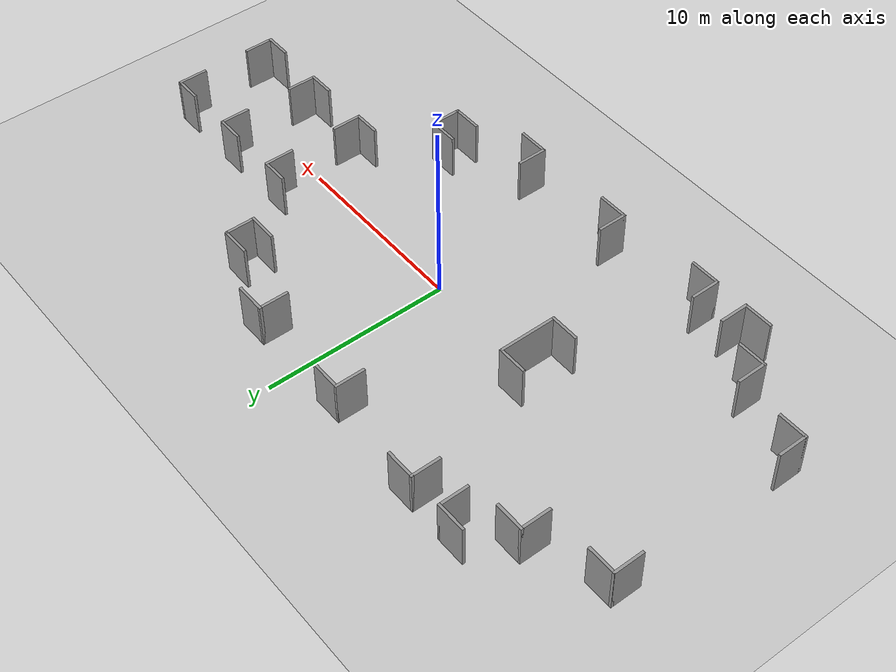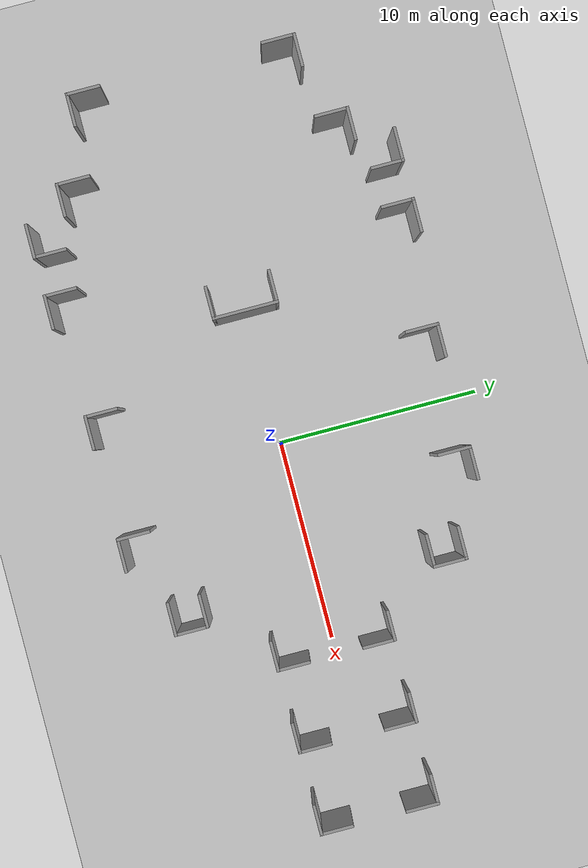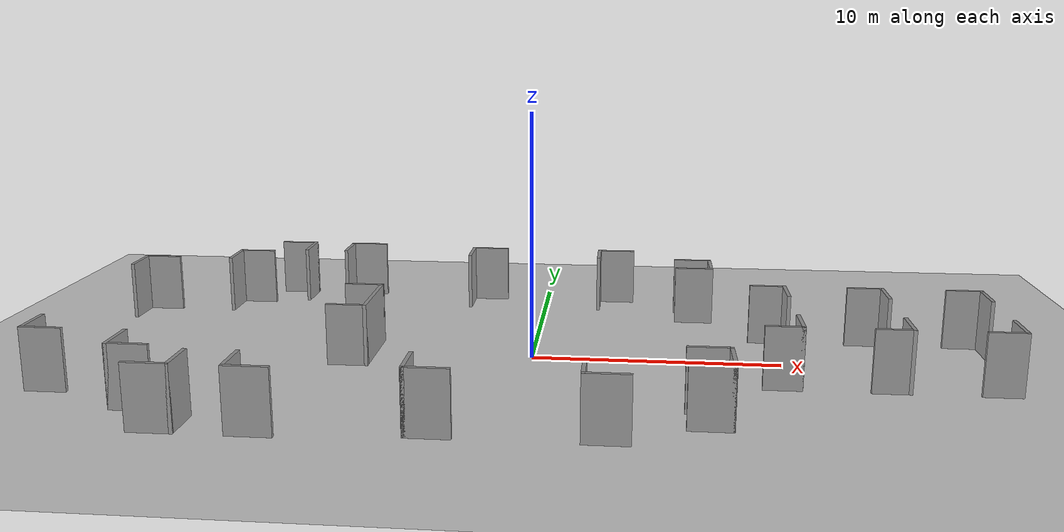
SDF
<sdf version="1.6">
 <world name="default">
  <model name="ground_plane">
   <static>1</static>
   <link name="link">
    <collision name="collision">
     <geometry><plane><normal>0 0 1</normal><size>100 100</size></plane></geometry>
     <surface>
      <contact><collide_bitmask>65535</collide_bitmask></contact>
      <friction><ode><mu>100</mu><mu2>50</mu2></ode></friction>
     </surface>
    </collision>
    <visual name="visual">
     <cast_shadows>0</cast_shadows>
     <geometry><plane><normal>0 0 1</normal><size>100 100</size></plane></geometry>
     <material>
      <script><uri>file://media/materials/scripts/gazebo.material</uri><name>Gazebo/Grey</name></script>
     </material>
    </visual>
   </link>
  </model>
  <model name="hospital_restriction_walls">
   <pose>-0.075 0 0 0 0 -1.57</pose>
   <link name="Wall_10">
    <collision name="Wall_10_Collision">
     <geometry><box><size>1.7 0.15 2.5</size></box></geometry>
     <pose>0 0 1.25 0 -0 0</pose>
    </collision>
    <visual name="Wall_10_Visual">
     <pose>0 0 1.25 0 -0 0</pose>
     <geometry><box><size>1.7 0.15 2.5</size></box></geometry>
     <material>
      <script><uri>file://media/materials/scripts/gazebo.material</uri><name>Gazebo/Grey</name></script>
      <ambient>1 1 1 1</ambient>
     </material>
     <meta><layer>0</layer></meta>
    </visual>
    <pose>4.775 -18.425 0 0 -0 3.14159</pose>
   </link>
   <link name="Wall_12">
    <collision name="Wall_12_Collision">
     <geometry><box><size>1.65 0.15 2.5</size></box></geometry>
     <pose>0 0 1.25 0 -0 0</pose>
    </collision>
    <visual name="Wall_12_Visual">
     <pose>0 0 1.25 0 -0 0</pose>
     <geometry><box><size>1.65 0.15 2.5</size></box></geometry>
     <material>
      <script><uri>file://media/materials/scripts/gazebo.material</uri><name>Gazebo/Grey</name></script>
      <ambient>1 1 1 1</ambient>
     </material>
     <meta><layer>0</layer></meta>
    </visual>
    <pose>-7.1 -13.675 0 0 -0 1.5708</pose>
   </link>
   <link name="Wall_14">
    <collision name="Wall_14_Collision">
     <geometry><box><size>1.7 0.15 2.5</size></box></geometry>
     <pose>0 0 1.25 0 -0 0</pose>
    </collision>
    <visual name="Wall_14_Visual">
     <pose>0 0 1.25 0 -0 0</pose>
     <geometry><box><size>1.7 0.15 2.5</size></box></geometry>
     <material>
      <script><uri>file://media/materials/scripts/gazebo.material</uri><name>Gazebo/Grey</name></script>
      <ambient>1 1 1 1</ambient>
     </material>
     <meta><layer>0</layer></meta>
    </visual>
    <pose>-6.325 -14.425 0 0 -0 0</pose>
   </link>
   <link name="Wall_16">
    <collision name="Wall_16_Collision">
     <geometry><box><size>1.65 0.15 2.5</size></box></geometry>
     <pose>0 0 1.25 0 -0 0</pose>
    </collision>
    <visual name="Wall_16_Visual">
     <pose>0 0 1.25 0 -0 0</pose>
     <geometry><box><size>1.65 0.15 2.5</size></box></geometry>
     <material>
      <script><uri>file://media/materials/scripts/gazebo.material</uri><name>Gazebo/Grey</name></script>
      <ambient>1 1 1 1</ambient>
     </material>
     <meta><layer>0</layer></meta>
    </visual>
    <pose>7.1 -13.675 0 0 -0 1.5708</pose>
   </link>
   <link name="Wall_18">
    <collision name="Wall_18_Collision">
     <geometry><box><size>1.7 0.15 2.5</size></box></geometry>
     <pose>0 0 1.25 0 -0 0</pose>
    </collision>
    <visual name="Wall_18_Visual">
     <pose>0 0 1.25 0 -0 0</pose>
     <geometry><box><size>1.7 0.15 2.5</size></box></geometry>
     <material>
      <script><uri>file://media/materials/scripts/gazebo.material</uri><name>Gazebo/Grey</name></script>
      <ambient>1 1 1 1</ambient>
     </material>
     <meta><layer>0</layer></meta>
    </visual>
    <pose>6.325 -14.425 0 0 -0 3.14159</pose>
   </link>
   <link name="Wall_20">
    <collision name="Wall_20_Collision">
     <geometry><box><size>1.7 0.15 2.5</size></box></geometry>
     <pose>0 0 1.25 0 -0 0</pose>
    </collision>
    <visual name="Wall_20_Visual">
     <pose>0 0 1.25 0 -0 0</pose>
     <geometry><box><size>1.7 0.15 2.5</size></box></geometry>
     <material>
      <script><uri>file://media/materials/scripts/gazebo.material</uri><name>Gazebo/Grey</name></script>
      <ambient>1 1 1 1</ambient>
     </material>
     <meta><layer>0</layer></meta>
    </visual>
    <pose>-9 -12.15 0 0 -0 1.5708</pose>
   </link>
   <link name="Wall_22">
    <collision name="Wall_22_Collision">
     <geometry><box><size>1.65 0.15 2.5</size></box></geometry>
     <pose>0 0 1.25 0 -0 0</pose>
    </collision>
    <visual name="Wall_22_Visual">
     <pose>0 0 1.25 0 -0 0</pose>
     <geometry><box><size>1.65 0.15 2.5</size></box></geometry>
     <material>
      <script><uri>file://media/materials/scripts/gazebo.material</uri><name>Gazebo/Grey</name></script>
      <ambient>1 1 1 1</ambient>
     </material>
     <meta><layer>0</layer></meta>
    </visual>
    <pose>-8.25 -11.375 0 0 -0 0</pose>
   </link>
   <link name="Wall_24">
    <collision name="Wall_24_Collision">
     <geometry><box><size>1.7 0.15 2.5</size></box></geometry>
     <pose>0 0 1.25 0 -0 0</pose>
    </collision>
    <visual name="Wall_24_Visual">
     <pose>0 0 1.25 0 -0 0</pose>
     <geometry><box><size>1.7 0.15 2.5</size></box></geometry>
     <material>
      <script><uri>file://media/materials/scripts/gazebo.material</uri><name>Gazebo/Grey</name></script>
      <ambient>1 1 1 1</ambient>
     </material>
     <meta><layer>0</layer></meta>
    </visual>
    <pose>-9 -8.7 0 0 -0 1.5708</pose>
   </link>
   <link name="Wall_26">
    <collision name="Wall_26_Collision">
     <geometry><box><size>1.65 0.15 2.5</size></box></geometry>
     <pose>0 0 1.25 0 -0 0</pose>
    </collision>
    <visual name="Wall_26_Visual">
     <pose>0 0 1.25 0 -0 0</pose>
     <geometry><box><size>1.65 0.15 2.5</size></box></geometry>
     <material>
      <script><uri>file://media/materials/scripts/gazebo.material</uri><name>Gazebo/Grey</name></script>
      <ambient>1 1 1 1</ambient>
     </material>
     <meta><layer>0</layer></meta>
    </visual>
    <pose>-8.25 -9.475 0 0 -0 0</pose>
   </link>
   <link name="Wall_28">
    <collision name="Wall_28_Collision">
     <geometry><box><size>1.7 0.15 2.5</size></box></geometry>
     <pose>0 0 1.25 0 -0 0</pose>
    </collision>
    <visual name="Wall_28_Visual">
     <pose>0 0 1.25 0 -0 0</pose>
     <geometry><box><size>1.7 0.15 2.5</size></box></geometry>
     <material>
      <script><uri>file://media/materials/scripts/gazebo.material</uri><name>Gazebo/Grey</name></script>
      <ambient>1 1 1 1</ambient>
     </material>
     <meta><layer>0</layer></meta>
    </visual>
    <pose>9 -8.7 0 0 -0 1.5708</pose>
   </link>
   <link name="Wall_30">
    <collision name="Wall_30_Collision">
     <geometry><box><size>1.65 0.15 2.5</size></box></geometry>
     <pose>0 0 1.25 0 -0 0</pose>
    </collision>
    <visual name="Wall_30_Visual">
     <pose>0 0 1.25 0 -0 0</pose>
     <geometry><box><size>1.65 0.15 2.5</size></box></geometry>
     <material>
      <script><uri>file://media/materials/scripts/gazebo.material</uri><name>Gazebo/Grey</name></script>
      <ambient>1 1 1 1</ambient>
     </material>
     <meta><layer>0</layer></meta>
    </visual>
    <pose>8.25 -9.475 0 0 -0 3.14159</pose>
   </link>
   <link name="Wall_32">
    <collision name="Wall_32_Collision">
     <geometry><box><size>1.7 0.15 2.5</size></box></geometry>
     <pose>0 0 1.25 0 -0 0</pose>
    </collision>
    <visual name="Wall_32_Visual">
     <pose>0 0 1.25 0 -0 0</pose>
     <geometry><box><size>1.7 0.15 2.5</size></box></geometry>
     <material>
      <script><uri>file://media/materials/scripts/gazebo.material</uri><name>Gazebo/Grey</name></script>
      <ambient>1 1 1 1</ambient>
     </material>
     <meta><layer>0</layer></meta>
    </visual>
    <pose>9 -12.15 0 0 -0 1.5708</pose>
   </link>
   <link name="Wall_34">
    <collision name="Wall_34_Collision">
     <geometry><box><size>1.65 0.15 2.5</size></box></geometry>
     <pose>0 0 1.25 0 -0 0</pose>
    </collision>
    <visual name="Wall_34_Visual">
     <pose>0 0 1.25 0 -0 0</pose>
     <geometry><box><size>1.65 0.15 2.5</size></box></geometry>
     <material>
      <script><uri>file://media/materials/scripts/gazebo.material</uri><name>Gazebo/Grey</name></script>
      <ambient>1 1 1 1</ambient>
     </material>
     <meta><layer>0</layer></meta>
    </visual>
    <pose>8.25 -11.375 0 0 -0 0</pose>
   </link>
   <link name="Wall_36">
    <collision name="Wall_36_Collision">
     <geometry><box><size>1.65 0.15 2.5</size></box></geometry>
     <pose>0 0 1.25 0 -0 0</pose>
    </collision>
    <visual name="Wall_36_Visual">
     <pose>0 0 1.25 0 -0 0</pose>
     <geometry><box><size>1.65 0.15 2.5</size></box></geometry>
     <material>
      <script><uri>file://media/materials/scripts/gazebo.material</uri><name>Gazebo/Grey</name></script>
      <ambient>1 1 1 1</ambient>
     </material>
     <meta><layer>0</layer></meta>
    </visual>
    <pose>-1.55 -7.175 0 0 -0 1.5708</pose>
   </link>
   <link name="Wall_38">
    <collision name="Wall_38_Collision">
     <geometry><box><size>1.65 0.15 2.5</size></box></geometry>
     <pose>0 0 1.25 0 -0 0</pose>
    </collision>
    <visual name="Wall_38_Visual">
     <pose>0 0 1.25 0 -0 0</pose>
     <geometry><box><size>1.65 0.15 2.5</size></box></geometry>
     <material>
      <script><uri>file://media/materials/scripts/gazebo.material</uri><name>Gazebo/Grey</name></script>
      <ambient>1 1 1 1</ambient>
     </material>
     <meta><layer>0</layer></meta>
    </visual>
    <pose>1.55 -7.175 0 0 -0 1.5708</pose>
   </link>
   <link name="Wall_4">
    <collision name="Wall_4_Collision">
     <geometry><box><size>1.65 0.15 2.5</size></box></geometry>
     <pose>0 0 1.25 0 -0 0</pose>
    </collision>
    <visual name="Wall_4_Visual">
     <pose>0 0 1.25 0 -0 0</pose>
     <geometry><box><size>1.65 0.15 2.5</size></box></geometry>
     <material>
      <script><uri>file://media/materials/scripts/gazebo.material</uri><name>Gazebo/Grey</name></script>
      <ambient>1 1 1 1</ambient>
     </material>
     <meta><layer>0</layer></meta>
    </visual>
    <pose>-5.55 -17.675 0 0 -0 1.5708</pose>
   </link>
   <link name="Wall_40">
    <collision name="Wall_40_Collision">
     <geometry><box><size>3.25 0.15 2.5</size></box></geometry>
     <pose>0 0 1.25 0 -0 0</pose>
    </collision>
    <visual name="Wall_40_Visual">
     <pose>0 0 1.25 0 -0 0</pose>
     <geometry><box><size>3.25 0.15 2.5</size></box></geometry>
     <material>
      <script><uri>file://media/materials/scripts/gazebo.material</uri><name>Gazebo/Grey</name></script>
      <ambient>1 1 1 1</ambient>
     </material>
     <meta><layer>0</layer></meta>
    </visual>
    <pose>0 -6.425 0 0 -0 0</pose>
   </link>
   <link name="Wall_42">
    <collision name="Wall_42_Collision">
     <geometry><box><size>1.65 0.15 2.5</size></box></geometry>
     <pose>0 0 1.25 0 -0 0</pose>
    </collision>
    <visual name="Wall_42_Visual">
     <pose>0 0 1.25 0 -0 0</pose>
     <geometry><box><size>1.65 0.15 2.5</size></box></geometry>
     <material>
      <script><uri>file://media/materials/scripts/gazebo.material</uri><name>Gazebo/Grey</name></script>
      <ambient>1 1 1 1</ambient>
     </material>
     <meta><layer>0</layer></meta>
    </visual>
    <pose>-7.85 -3.475 0 0 -0 0</pose>
   </link>
   <link name="Wall_44">
    <collision name="Wall_44_Collision">
     <geometry><box><size>1.7 0.15 2.5</size></box></geometry>
     <pose>0 0 1.25 0 -0 0</pose>
    </collision>
    <visual name="Wall_44_Visual">
     <pose>0 0 1.25 0 -0 0</pose>
     <geometry><box><size>1.7 0.15 2.5</size></box></geometry>
     <material>
      <script><uri>file://media/materials/scripts/gazebo.material</uri><name>Gazebo/Grey</name></script>
      <ambient>1 1 1 1</ambient>
     </material>
     <meta><layer>0</layer></meta>
    </visual>
    <pose>-8.6 -2.7 0 0 -0 1.5708</pose>
   </link>
   <link name="Wall_46">
    <collision name="Wall_46_Collision">
     <geometry><box><size>1.7 0.15 2.5</size></box></geometry>
     <pose>0 0 1.25 0 -0 0</pose>
    </collision>
    <visual name="Wall_46_Visual">
     <pose>0 0 1.25 0 -0 0</pose>
     <geometry><box><size>1.7 0.15 2.5</size></box></geometry>
     <material>
      <script><uri>file://media/materials/scripts/gazebo.material</uri><name>Gazebo/Grey</name></script>
      <ambient>1 1 1 1</ambient>
     </material>
     <meta><layer>0</layer></meta>
    </visual>
    <pose>8.6 -2.7 0 0 -0 1.5708</pose>
   </link>
   <link name="Wall_48">
    <collision name="Wall_48_Collision">
     <geometry><box><size>1.65 0.15 2.5</size></box></geometry>
     <pose>0 0 1.25 0 -0 0</pose>
    </collision>
    <visual name="Wall_48_Visual">
     <pose>0 0 1.25 0 -0 0</pose>
     <geometry><box><size>1.65 0.15 2.5</size></box></geometry>
     <material>
      <script><uri>file://media/materials/scripts/gazebo.material</uri><name>Gazebo/Grey</name></script>
      <ambient>1 1 1 1</ambient>
     </material>
     <meta><layer>0</layer></meta>
    </visual>
    <pose>7.85 -3.475 0 0 -0 3.14159</pose>
   </link>
   <link name="Wall_50">
    <collision name="Wall_50_Collision">
     <geometry><box><size>1.65 0.15 2.5</size></box></geometry>
     <pose>0 0 1.25 0 -0 0</pose>
    </collision>
    <visual name="Wall_50_Visual">
     <pose>0 0 1.25 0 -0 0</pose>
     <geometry><box><size>1.65 0.15 2.5</size></box></geometry>
     <material>
      <script><uri>file://media/materials/scripts/gazebo.material</uri><name>Gazebo/Grey</name></script>
      <ambient>1 1 1 1</ambient>
     </material>
     <meta><layer>0</layer></meta>
    </visual>
    <pose>-7.85 2.525 0 0 -0 0</pose>
   </link>
   <link name="Wall_52">
    <collision name="Wall_52_Collision">
     <geometry><box><size>1.7 0.15 2.5</size></box></geometry>
     <pose>0 0 1.25 0 -0 0</pose>
    </collision>
    <visual name="Wall_52_Visual">
     <pose>0 0 1.25 0 -0 0</pose>
     <geometry><box><size>1.7 0.15 2.5</size></box></geometry>
     <material>
      <script><uri>file://media/materials/scripts/gazebo.material</uri><name>Gazebo/Grey</name></script>
      <ambient>1 1 1 1</ambient>
     </material>
     <meta><layer>0</layer></meta>
    </visual>
    <pose>-8.6 3.3 0 0 -0 1.5708</pose>
   </link>
   <link name="Wall_54">
    <collision name="Wall_54_Collision">
     <geometry><box><size>1.65 0.15 2.5</size></box></geometry>
     <pose>0 0 1.25 0 -0 0</pose>
    </collision>
    <visual name="Wall_54_Visual">
     <pose>0 0 1.25 0 -0 0</pose>
     <geometry><box><size>1.65 0.15 2.5</size></box></geometry>
     <material>
      <script><uri>file://media/materials/scripts/gazebo.material</uri><name>Gazebo/Grey</name></script>
      <ambient>1 1 1 1</ambient>
     </material>
     <meta><layer>0</layer></meta>
    </visual>
    <pose>7.85 2.525 0 0 -0 3.14159</pose>
   </link>
   <link name="Wall_56">
    <collision name="Wall_56_Collision">
     <geometry><box><size>1.7 0.15 2.5</size></box></geometry>
     <pose>0 0 1.25 0 -0 0</pose>
    </collision>
    <visual name="Wall_56_Visual">
     <pose>0 0 1.25 0 -0 0</pose>
     <geometry><box><size>1.7 0.15 2.5</size></box></geometry>
     <material>
      <script><uri>file://media/materials/scripts/gazebo.material</uri><name>Gazebo/Grey</name></script>
      <ambient>1 1 1 1</ambient>
     </material>
     <meta><layer>0</layer></meta>
    </visual>
    <pose>8.6 3.3 0 0 -0 1.5708</pose>
   </link>
   <link name="Wall_58">
    <collision name="Wall_58_Collision">
     <geometry><box><size>1.65 0.15 2.5</size></box></geometry>
     <pose>0 0 1.25 0 -0 0</pose>
    </collision>
    <visual name="Wall_58_Visual">
     <pose>0 0 1.25 0 -0 0</pose>
     <geometry><box><size>1.65 0.15 2.5</size></box></geometry>
     <material>
      <script><uri>file://media/materials/scripts/gazebo.material</uri><name>Gazebo/Grey</name></script>
      <ambient>1 1 1 1</ambient>
     </material>
     <meta><layer>0</layer></meta>
    </visual>
    <pose>-7.1 6.825 0 0 -0 1.5708</pose>
   </link>
   <link name="Wall_6">
    <collision name="Wall_6_Collision">
     <geometry><box><size>1.7 0.15 2.5</size></box></geometry>
     <pose>0 0 1.25 0 -0 0</pose>
    </collision>
    <visual name="Wall_6_Visual">
     <pose>0 0 1.25 0 -0 0</pose>
     <geometry><box><size>1.7 0.15 2.5</size></box></geometry>
     <material>
      <script><uri>file://media/materials/scripts/gazebo.material</uri><name>Gazebo/Grey</name></script>
      <ambient>1 1 1 1</ambient>
     </material>
     <meta><layer>0</layer></meta>
    </visual>
    <pose>-4.775 -18.425 0 0 -0 0</pose>
   </link>
   <link name="Wall_60">
    <collision name="Wall_60_Collision">
     <geometry><box><size>1.7 0.15 2.5</size></box></geometry>
     <pose>0 0 1.25 0 -0 0</pose>
    </collision>
    <visual name="Wall_60_Visual">
     <pose>0 0 1.25 0 -0 0</pose>
     <geometry><box><size>1.7 0.15 2.5</size></box></geometry>
     <material>
      <script><uri>file://media/materials/scripts/gazebo.material</uri><name>Gazebo/Grey</name></script>
      <ambient>1 1 1 1</ambient>
     </material>
     <meta><layer>0</layer></meta>
    </visual>
    <pose>-6.325 7.575 0 0 -0 0</pose>
   </link>
   <link name="Wall_62">
    <collision name="Wall_62_Collision">
     <geometry><box><size>1.65 0.15 2.5</size></box></geometry>
     <pose>0 0 1.25 0 -0 0</pose>
    </collision>
    <visual name="Wall_62_Visual">
     <pose>0 0 1.25 0 -0 0</pose>
     <geometry><box><size>1.65 0.15 2.5</size></box></geometry>
     <material>
      <script><uri>file://media/materials/scripts/gazebo.material</uri><name>Gazebo/Grey</name></script>
      <ambient>1 1 1 1</ambient>
     </material>
     <meta><layer>0</layer></meta>
    </visual>
    <pose>-5.55 6.825 0 0 -0 -1.5708</pose>
   </link>
   <link name="Wall_64">
    <collision name="Wall_64_Collision">
     <geometry><box><size>1.65 0.15 2.5</size></box></geometry>
     <pose>0 0 1.25 0 -0 0</pose>
    </collision>
    <visual name="Wall_64_Visual">
     <pose>0 0 1.25 0 -0 0</pose>
     <geometry><box><size>1.65 0.15 2.5</size></box></geometry>
     <material>
      <script><uri>file://media/materials/scripts/gazebo.material</uri><name>Gazebo/Grey</name></script>
      <ambient>1 1 1 1</ambient>
     </material>
     <meta><layer>0</layer></meta>
    </visual>
    <pose>7.1 6.825 0 0 -0 1.5708</pose>
   </link>
   <link name="Wall_66">
    <collision name="Wall_66_Collision">
     <geometry><box><size>1.65 0.15 2.5</size></box></geometry>
     <pose>0 0 1.25 0 -0 0</pose>
    </collision>
    <visual name="Wall_66_Visual">
     <pose>0 0 1.25 0 -0 0</pose>
     <geometry><box><size>1.65 0.15 2.5</size></box></geometry>
     <material>
      <script><uri>file://media/materials/scripts/gazebo.material</uri><name>Gazebo/Grey</name></script>
      <ambient>1 1 1 1</ambient>
     </material>
     <meta><layer>0</layer></meta>
    </visual>
    <pose>5.55 6.825 0 0 -0 1.5708</pose>
   </link>
   <link name="Wall_68">
    <collision name="Wall_68_Collision">
     <geometry><box><size>1.7 0.15 2.5</size></box></geometry>
     <pose>0 0 1.25 0 -0 0</pose>
    </collision>
    <visual name="Wall_68_Visual">
     <pose>0 0 1.25 0 -0 0</pose>
     <geometry><box><size>1.7 0.15 2.5</size></box></geometry>
     <material>
      <script><uri>file://media/materials/scripts/gazebo.material</uri><name>Gazebo/Grey</name></script>
      <ambient>1 1 1 1</ambient>
     </material>
     <meta><layer>0</layer></meta>
    </visual>
    <pose>6.325 7.575 0 0 -0 0</pose>
   </link>
   <link name="Wall_70">
    <collision name="Wall_70_Collision">
     <geometry><box><size>1.5 0.15 2.5</size></box></geometry>
     <pose>0 0 1.25 0 -0 0</pose>
    </collision>
    <visual name="Wall_70_Visual">
     <pose>0 0 1.25 0 -0 0</pose>
     <geometry><box><size>1.5 0.15 2.5</size></box></geometry>
     <material>
      <script><uri>file://media/materials/scripts/gazebo.material</uri><name>Gazebo/Grey</name></script>
      <ambient>1 1 1 1</ambient>
     </material>
     <meta><layer>0</layer></meta>
    </visual>
    <pose>-2.85 9.75 0 0 -0 1.5708</pose>
   </link>
   <link name="Wall_72">
    <collision name="Wall_72_Collision">
     <geometry><box><size>1.65 0.15 2.5</size></box></geometry>
     <pose>0 0 1.25 0 -0 0</pose>
    </collision>
    <visual name="Wall_72_Visual">
     <pose>0 0 1.25 0 -0 0</pose>
     <geometry><box><size>1.65 0.15 2.5</size></box></geometry>
     <material>
      <script><uri>file://media/materials/scripts/gazebo.material</uri><name>Gazebo/Grey</name></script>
      <ambient>1 1 1 1</ambient>
     </material>
     <meta><layer>0</layer></meta>
    </visual>
    <pose>-2.1 10.425 0 0 -0 0</pose>
   </link>
   <link name="Wall_74">
    <collision name="Wall_74_Collision">
     <geometry><box><size>1.5 0.15 2.5</size></box></geometry>
     <pose>0 0 1.25 0 -0 0</pose>
    </collision>
    <visual name="Wall_74_Visual">
     <pose>0 0 1.25 0 -0 0</pose>
     <geometry><box><size>1.5 0.15 2.5</size></box></geometry>
     <material>
      <script><uri>file://media/materials/scripts/gazebo.material</uri><name>Gazebo/Grey</name></script>
      <ambient>1 1 1 1</ambient>
     </material>
     <meta><layer>0</layer></meta>
    </visual>
    <pose>2.85 9.75 0 0 -0 1.5708</pose>
   </link>
   <link name="Wall_76">
    <collision name="Wall_76_Collision">
     <geometry><box><size>1.65 0.15 2.5</size></box></geometry>
     <pose>0 0 1.25 0 -0 0</pose>
    </collision>
    <visual name="Wall_76_Visual">
     <pose>0 0 1.25 0 -0 0</pose>
     <geometry><box><size>1.65 0.15 2.5</size></box></geometry>
     <material>
      <script><uri>file://media/materials/scripts/gazebo.material</uri><name>Gazebo/Grey</name></script>
      <ambient>1 1 1 1</ambient>
     </material>
     <meta><layer>0</layer></meta>
    </visual>
    <pose>2.1 10.425 0 0 -0 0</pose>
   </link>
   <link name="Wall_78">
    <collision name="Wall_78_Collision">
     <geometry><box><size>1.5 0.15 2.5</size></box></geometry>
     <pose>0 0 1.25 0 -0 0</pose>
    </collision>
    <visual name="Wall_78_Visual">
     <pose>0 0 1.25 0 -0 0</pose>
     <geometry><box><size>1.5 0.15 2.5</size></box></geometry>
     <material>
      <script><uri>file://media/materials/scripts/gazebo.material</uri><name>Gazebo/Grey</name></script>
      <ambient>1 1 1 1</ambient>
     </material>
     <meta><layer>0</layer></meta>
    </visual>
    <pose>2.85 13.75 0 0 -0 1.5708</pose>
   </link>
   <link name="Wall_8">
    <collision name="Wall_8_Collision">
     <geometry><box><size>1.65 0.15 2.5</size></box></geometry>
     <pose>0 0 1.25 0 -0 0</pose>
    </collision>
    <visual name="Wall_8_Visual">
     <pose>0 0 1.25 0 -0 0</pose>
     <geometry><box><size>1.65 0.15 2.5</size></box></geometry>
     <material>
      <script><uri>file://media/materials/scripts/gazebo.material</uri><name>Gazebo/Grey</name></script>
      <ambient>1 1 1 1</ambient>
     </material>
     <meta><layer>0</layer></meta>
    </visual>
    <pose>5.55 -17.675 0 0 -0 1.5708</pose>
   </link>
   <link name="Wall_80">
    <collision name="Wall_80_Collision">
     <geometry><box><size>1.65 0.15 2.5</size></box></geometry>
     <pose>0 0 1.25 0 -0 0</pose>
    </collision>
    <visual name="Wall_80_Visual">
     <pose>0 0 1.25 0 -0 0</pose>
     <geometry><box><size>1.65 0.15 2.5</size></box></geometry>
     <material>
      <script><uri>file://media/materials/scripts/gazebo.material</uri><name>Gazebo/Grey</name></script>
      <ambient>1 1 1 1</ambient>
     </material>
     <meta><layer>0</layer></meta>
    </visual>
    <pose>2.1 14.425 0 0 -0 3.14159</pose>
   </link>
   <link name="Wall_82">
    <collision name="Wall_82_Collision">
     <geometry><box><size>1.5 0.15 2.5</size></box></geometry>
     <pose>0 0 1.25 0 -0 0</pose>
    </collision>
    <visual name="Wall_82_Visual">
     <pose>0 0 1.25 0 -0 0</pose>
     <geometry><box><size>1.5 0.15 2.5</size></box></geometry>
     <material>
      <script><uri>file://media/materials/scripts/gazebo.material</uri><name>Gazebo/Grey</name></script>
      <ambient>1 1 1 1</ambient>
     </material>
     <meta><layer>0</layer></meta>
    </visual>
    <pose>-2.85 13.75 0 0 -0 1.5708</pose>
   </link>
   <link name="Wall_84">
    <collision name="Wall_84_Collision">
     <geometry><box><size>1.65 0.15 2.5</size></box></geometry>
     <pose>0 0 1.25 0 -0 0</pose>
    </collision>
    <visual name="Wall_84_Visual">
     <pose>0 0 1.25 0 -0 0</pose>
     <geometry><box><size>1.65 0.15 2.5</size></box></geometry>
     <material>
      <script><uri>file://media/materials/scripts/gazebo.material</uri><name>Gazebo/Grey</name></script>
      <ambient>1 1 1 1</ambient>
     </material>
     <meta><layer>0</layer></meta>
    </visual>
    <pose>-2.1 14.425 0 0 -0 3.14159</pose>
   </link>
   <link name="Wall_86">
    <collision name="Wall_86_Collision">
     <geometry><box><size>1.65 0.15 2.5</size></box></geometry>
     <pose>0 0 1.25 0 -0 0</pose>
    </collision>
    <visual name="Wall_86_Visual">
     <pose>0 0 1.25 0 -0 0</pose>
     <geometry><box><size>1.65 0.15 2.5</size></box></geometry>
     <material>
      <script><uri>file://media/materials/scripts/gazebo.material</uri><name>Gazebo/Grey</name></script>
      <ambient>1 1 1 1</ambient>
     </material>
     <meta><layer>0</layer></meta>
    </visual>
    <pose>-2.1 18.425 0 0 -0 3.14159</pose>
   </link>
   <link name="Wall_88">
    <collision name="Wall_88_Collision">
     <geometry><box><size>1.5 0.15 2.5</size></box></geometry>
     <pose>0 0 1.25 0 -0 0</pose>
    </collision>
    <visual name="Wall_88_Visual">
     <pose>0 0 1.25 0 -0 0</pose>
     <geometry><box><size>1.5 0.15 2.5</size></box></geometry>
     <material>
      <script><uri>file://media/materials/scripts/gazebo.material</uri><name>Gazebo/Grey</name></script>
      <ambient>1 1 1 1</ambient>
     </material>
     <meta><layer>0</layer></meta>
    </visual>
    <pose>-2.85 17.75 0 0 -0 -1.5708</pose>
   </link>
   <link name="Wall_90">
    <collision name="Wall_90_Collision">
     <geometry><box><size>1.5 0.15 2.5</size></box></geometry>
     <pose>0 0 1.25 0 -0 0</pose>
    </collision>
    <visual name="Wall_90_Visual">
     <pose>0 0 1.25 0 -0 0</pose>
     <geometry><box><size>1.5 0.15 2.5</size></box></geometry>
     <material>
      <script><uri>file://media/materials/scripts/gazebo.material</uri><name>Gazebo/Grey</name></script>
      <ambient>1 1 1 1</ambient>
     </material>
     <meta><layer>0</layer></meta>
    </visual>
    <pose>2.85 17.75 0 0 -0 -1.5708</pose>
   </link>
   <link name="Wall_92">
    <collision name="Wall_92_Collision">
     <geometry><box><size>1.65 0.15 2.5</size></box></geometry>
     <pose>0 0 1.25 0 -0 0</pose>
    </collision>
    <visual name="Wall_92_Visual">
     <pose>0 0 1.25 0 -0 0</pose>
     <geometry><box><size>1.65 0.15 2.5</size></box></geometry>
     <material>
      <script><uri>file://media/materials/scripts/gazebo.material</uri><name>Gazebo/Grey</name></script>
      <ambient>1 1 1 1</ambient>
     </material>
     <meta><layer>0</layer></meta>
    </visual>
    <pose>2.1 18.425 0 0 -0 0</pose>
   </link>
   <static>1</static>
  </model>
 </world>
</sdf>
